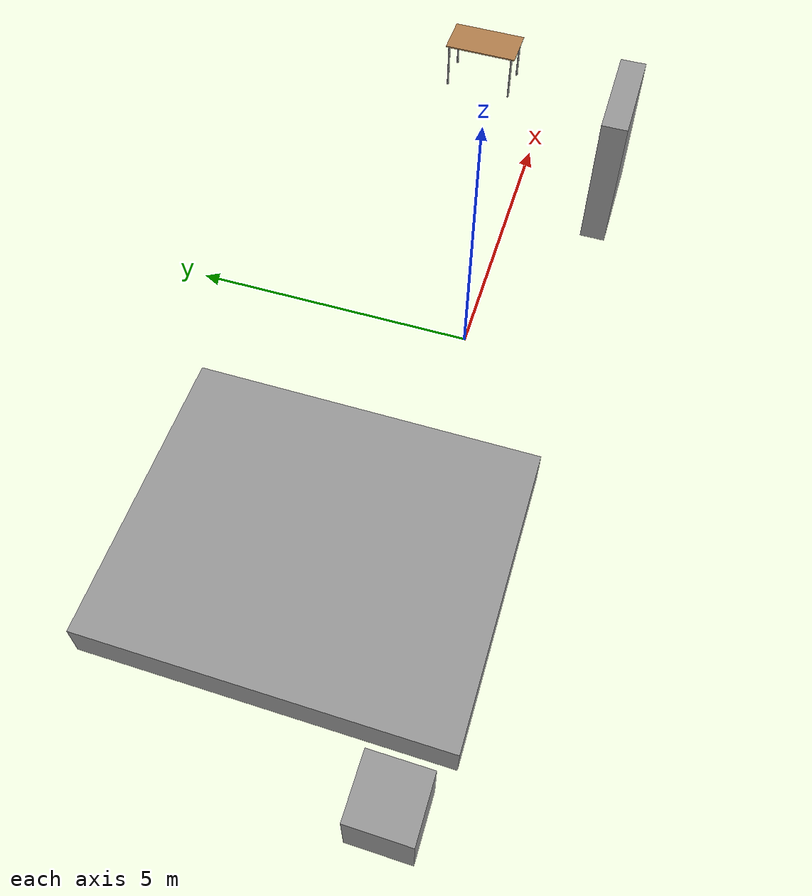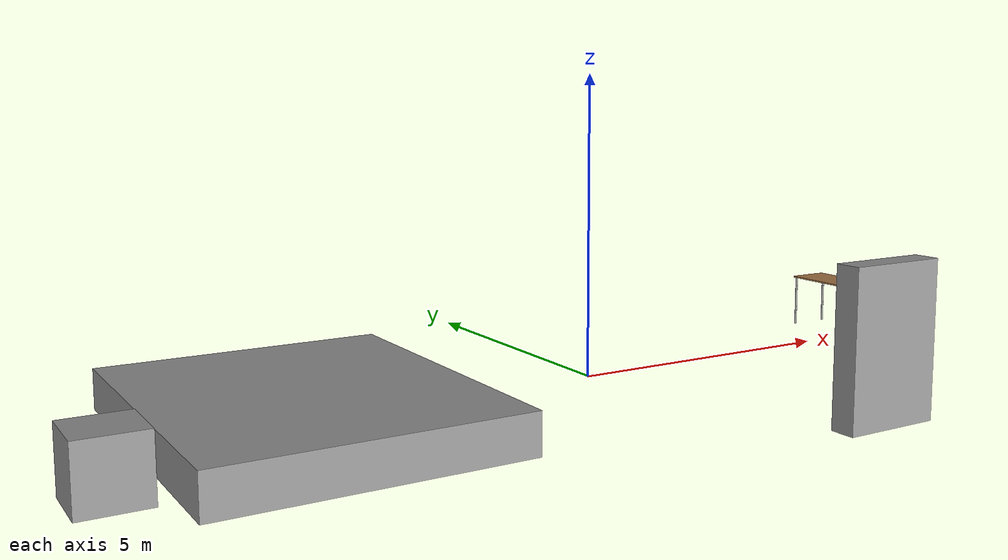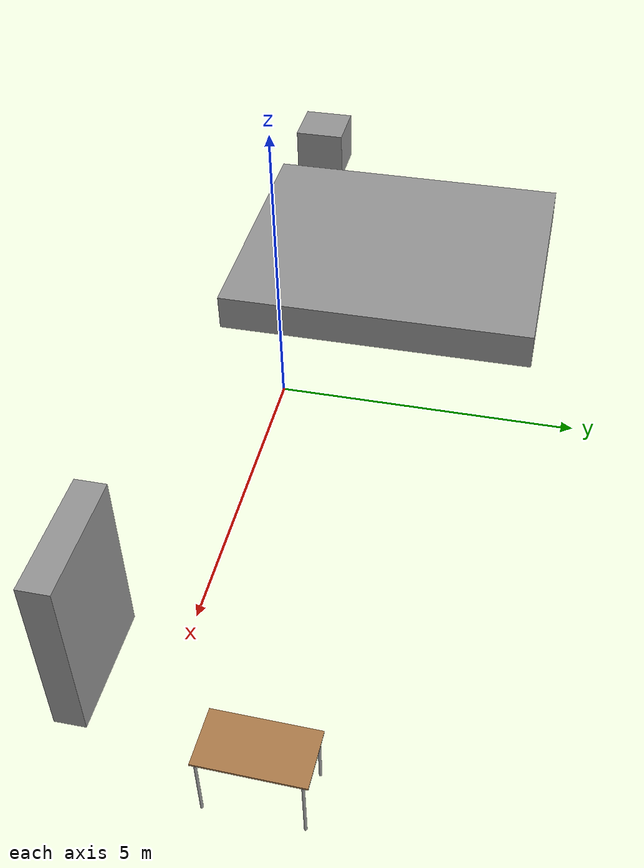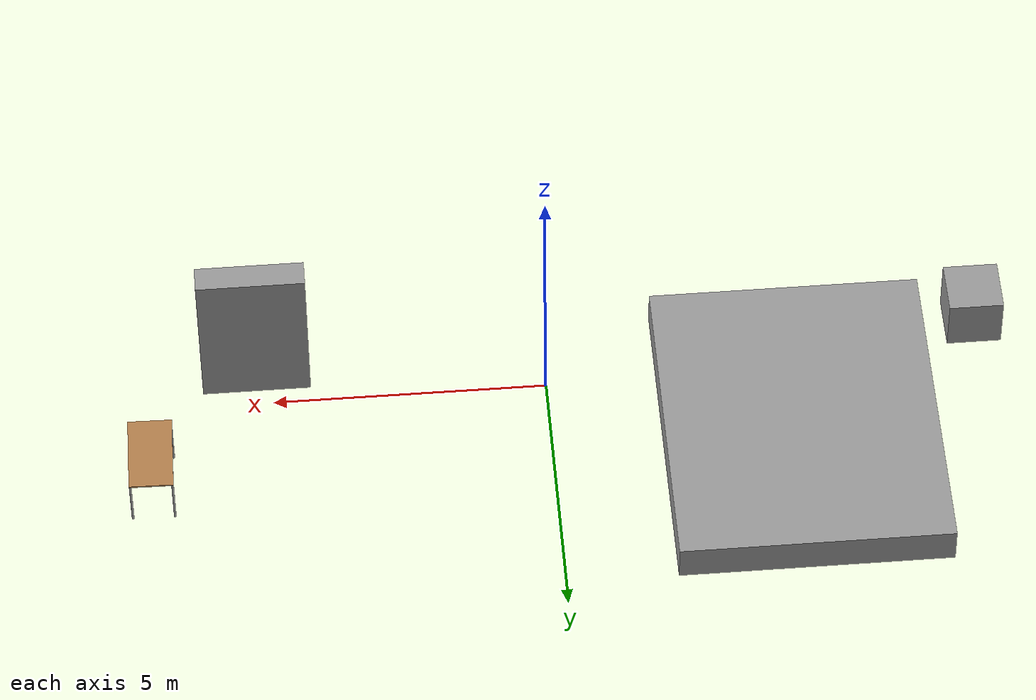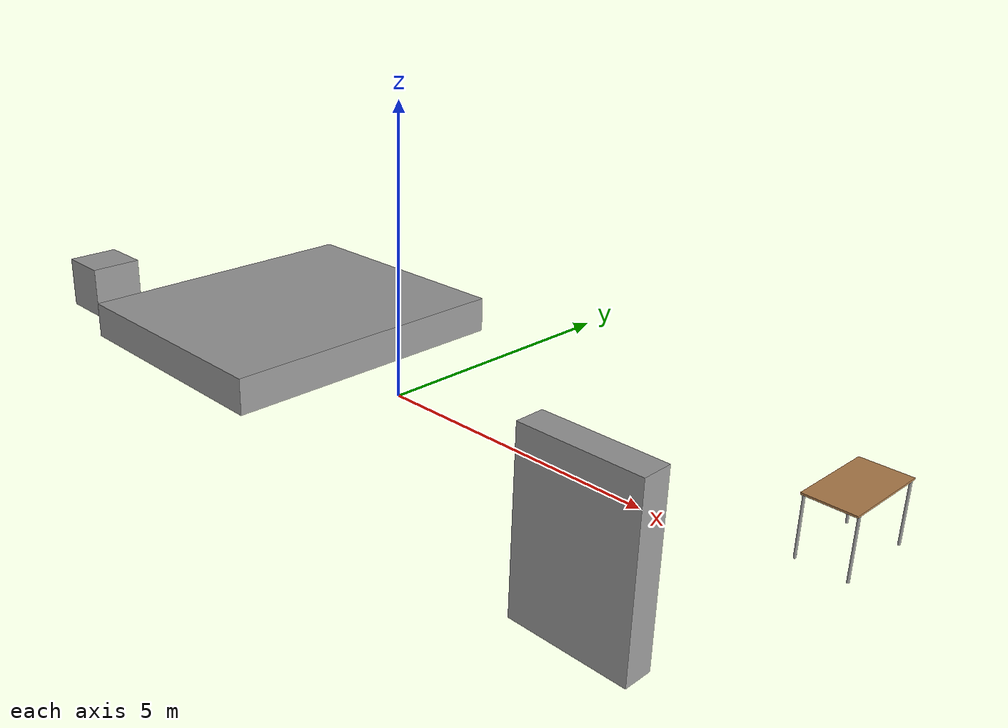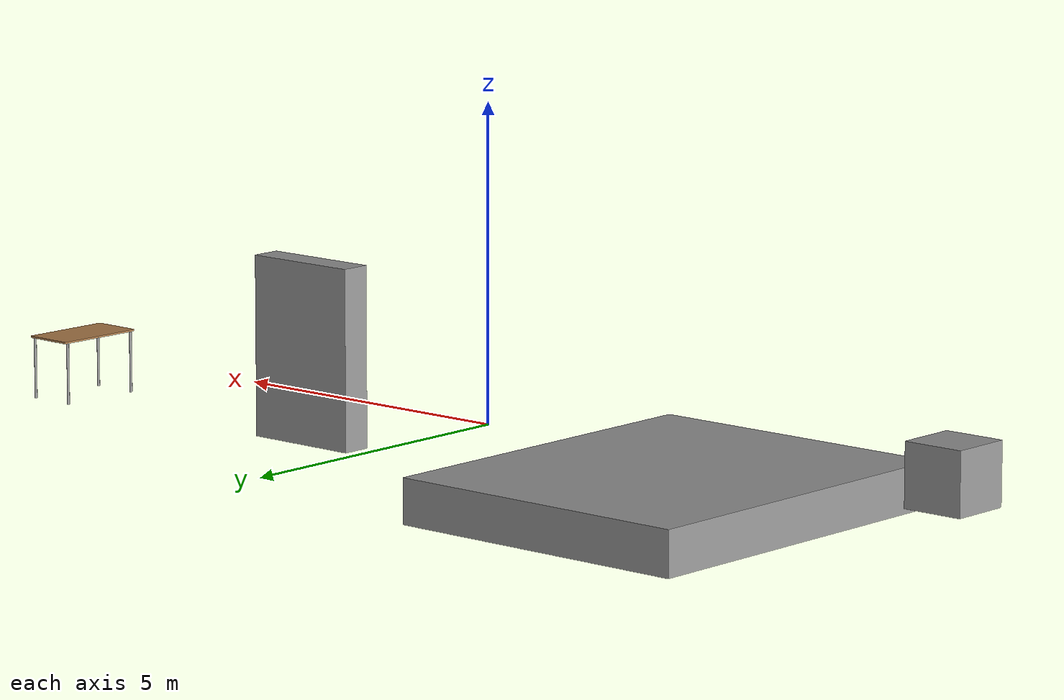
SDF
<?xml version='1.0'?>
<sdf version='1.6'>
  <model name='bedroom1'>
    <link name='link_7'>
      <pose frame=''>-4.56519 1.16033 -0.175 0 -0 0</pose>
      <inertial>
        <mass>1</mass>
        <inertia>
          <ixx>0.166667</ixx>
          <ixy>0</ixy>
          <ixz>0</ixz>
          <iyy>0.166667</iyy>
          <iyz>0</iyz>
          <izz>0.166667</izz>
        </inertia>
        <pose frame=''>0 0 0 0 -0 0</pose>
      </inertial>
      <gravity>1</gravity>
      <self_collide>0</self_collide>
      <kinematic>0</kinematic>
      <visual name='visual'>
        <pose frame=''>0 0 0 0 -0 0</pose>
        <geometry>
          <box>
            <size>5 6 0.7</size>
          </box>
        </geometry>
        <material>
          <lighting>1</lighting>
          <script>
            <uri>file://media/materials/scripts/gazebo.material</uri>
            <name>Gazebo/Grey</name>
          </script>
          <shader type='pixel'>
            <normal_map>__default__</normal_map>
          </shader>
          <ambient>0.3 0.3 0.3 1</ambient>
          <diffuse>0.7 0.7 0.7 1</diffuse>
          <specular>0.01 0.01 0.01 1</specular>
          <emissive>0 0 0 1</emissive>
        </material>
        <transparency>0</transparency>
        <cast_shadows>1</cast_shadows>
      </visual>
      <collision name='collision'>
        <laser_retro>0</laser_retro>
        <max_contacts>10</max_contacts>
        <pose frame=''>0 0 0 0 -0 0</pose>
        <geometry>
          <box>
            <size>5 6 0.7</size>
          </box>
        </geometry>
        <surface>
          <friction>
            <ode>
              <mu>1</mu>
              <mu2>1</mu2>
              <fdir1>0 0 0</fdir1>
              <slip1>0</slip1>
              <slip2>0</slip2>
            </ode>
            <torsional>
              <coefficient>1</coefficient>
              <patch_radius>0</patch_radius>
              <surface_radius>0</surface_radius>
              <use_patch_radius>1</use_patch_radius>
              <ode>
                <slip>0</slip>
              </ode>
            </torsional>
          </friction>
          <bounce>
            <restitution_coefficient>0</restitution_coefficient>
            <threshold>1e+06</threshold>
          </bounce>
          <contact>
            <collide_without_contact>0</collide_without_contact>
            <collide_without_contact_bitmask>1</collide_without_contact_bitmask>
            <collide_bitmask>1</collide_bitmask>
            <ode>
              <soft_cfm>0</soft_cfm>
              <soft_erp>0.2</soft_erp>
              <kp>1e+13</kp>
              <kd>1</kd>
              <max_vel>0.01</max_vel>
              <min_depth>0</min_depth>
            </ode>
            <bullet>
              <split_impulse>1</split_impulse>
              <split_impulse_penetration_threshold>-0.01</split_impulse_penetration_threshold>
              <soft_cfm>0</soft_cfm>
              <soft_erp>0.2</soft_erp>
              <kp>1e+13</kp>
              <kd>1</kd>
            </bullet>
          </contact>
        </surface>
      </collision>
    </link>
    <link name='link_12'>
      <pose frame=''>5.29621 -1.61388 0.225 0 -0 0</pose>
      <inertial>
        <mass>1</mass>
        <inertia>
          <ixx>0.166667</ixx>
          <ixy>0</ixy>
          <ixz>0</ixz>
          <iyy>0.166667</iyy>
          <iyz>0</iyz>
          <izz>0.166667</izz>
        </inertia>
        <pose frame=''>0 0 0 0 -0 0</pose>
      </inertial>
      <gravity>1</gravity>
      <self_collide>0</self_collide>
      <kinematic>0</kinematic>
      <visual name='visual'>
        <pose frame=''>0 0 0 0 -0 0</pose>
        <geometry>
          <box>
            <size>2 0.5 3</size>
          </box>
        </geometry>
        <material>
          <lighting>1</lighting>
          <script>
            <uri>file://media/materials/scripts/gazebo.material</uri>
            <name>Gazebo/Grey</name>
          </script>
          <shader type='pixel'>
            <normal_map>__default__</normal_map>
          </shader>
          <ambient>0.3 0.3 0.3 1</ambient>
          <diffuse>0.7 0.7 0.7 1</diffuse>
          <specular>0.01 0.01 0.01 1</specular>
          <emissive>0 0 0 1</emissive>
        </material>
        <transparency>0</transparency>
        <cast_shadows>1</cast_shadows>
      </visual>
      <collision name='collision'>
        <laser_retro>0</laser_retro>
        <max_contacts>10</max_contacts>
        <pose frame=''>0 0 0 0 -0 0</pose>
        <geometry>
          <box>
            <size>2 0.5 3</size>
          </box>
        </geometry>
        <surface>
          <friction>
            <ode>
              <mu>1</mu>
              <mu2>1</mu2>
              <fdir1>0 0 0</fdir1>
              <slip1>0</slip1>
              <slip2>0</slip2>
            </ode>
            <torsional>
              <coefficient>1</coefficient>
              <patch_radius>0</patch_radius>
              <surface_radius>0</surface_radius>
              <use_patch_radius>1</use_patch_radius>
              <ode>
                <slip>0</slip>
              </ode>
            </torsional>
          </friction>
          <bounce>
            <restitution_coefficient>0</restitution_coefficient>
            <threshold>1e+06</threshold>
          </bounce>
          <contact>
            <collide_without_contact>0</collide_without_contact>
            <collide_without_contact_bitmask>1</collide_without_contact_bitmask>
            <collide_bitmask>1</collide_bitmask>
            <ode>
              <soft_cfm>0</soft_cfm>
              <soft_erp>0.2</soft_erp>
              <kp>1e+13</kp>
              <kd>1</kd>
              <max_vel>0.01</max_vel>
              <min_depth>0</min_depth>
            </ode>
            <bullet>
              <split_impulse>1</split_impulse>
              <split_impulse_penetration_threshold>-0.01</split_impulse_penetration_threshold>
              <soft_cfm>0</soft_cfm>
              <soft_erp>0.2</soft_erp>
              <kp>1e+13</kp>
              <kd>1</kd>
            </bullet>
          </contact>
        </surface>
      </collision>
    </link>
    <link name='link_8'>
      <pose frame=''>-8.00297 -1.1238 0.225 0 -0 0</pose>
      <inertial>
        <mass>1</mass>
        <inertia>
          <ixx>0.166667</ixx>
          <ixy>0</ixy>
          <ixz>0</ixz>
          <iyy>0.166667</iyy>
          <iyz>0</iyz>
          <izz>0.166667</izz>
        </inertia>
      </inertial>
      <visual name='visual'>
        <pose frame=''>0 0 0 0 -0 0</pose>
        <geometry>
          <box>
            <size>1 1 1</size>
          </box>
        </geometry>
        <material>
          <lighting>1</lighting>
          <script>
            <uri>file://media/materials/scripts/gazebo.material</uri>
            <name>Gazebo/Grey</name>
          </script>
          <shader type='pixel'/>
          <ambient>0.3 0.3 0.3 1</ambient>
          <diffuse>0.7 0.7 0.7 1</diffuse>
          <specular>0.01 0.01 0.01 1</specular>
          <emissive>0 0 0 1</emissive>
        </material>
        <transparency>0</transparency>
        <cast_shadows>1</cast_shadows>
      </visual>
      <collision name='collision'>
        <laser_retro>0</laser_retro>
        <max_contacts>10</max_contacts>
        <pose frame=''>0 0 0 0 -0 0</pose>
        <geometry>
          <box>
            <size>1 1 1</size>
          </box>
        </geometry>
        <surface>
          <friction>
            <ode>
              <mu>1</mu>
              <mu2>1</mu2>
              <fdir1>0 0 0</fdir1>
              <slip1>0</slip1>
              <slip2>0</slip2>
            </ode>
            <torsional>
              <coefficient>1</coefficient>
              <patch_radius>0</patch_radius>
              <surface_radius>0</surface_radius>
              <use_patch_radius>1</use_patch_radius>
              <ode>
                <slip>0</slip>
              </ode>
            </torsional>
          </friction>
          <bounce>
            <restitution_coefficient>0</restitution_coefficient>
            <threshold>1e+06</threshold>
          </bounce>
          <contact>
            <collide_without_contact>0</collide_without_contact>
            <collide_without_contact_bitmask>1</collide_without_contact_bitmask>
            <collide_bitmask>1</collide_bitmask>
            <ode>
              <soft_cfm>0</soft_cfm>
              <soft_erp>0.2</soft_erp>
              <kp>1e+13</kp>
              <kd>1</kd>
              <max_vel>0.01</max_vel>
              <min_depth>0</min_depth>
            </ode>
            <bullet>
              <split_impulse>1</split_impulse>
              <split_impulse_penetration_threshold>-0.01</split_impulse_penetration_threshold>
              <soft_cfm>0</soft_cfm>
              <soft_erp>0.2</soft_erp>
              <kp>1e+13</kp>
              <kd>1</kd>
            </bullet>
          </contact>
        </surface>
      </collision>
    </link>
    <model name='table'>
      <static>1</static>
      <link name='link'>
        <collision name='surface'>
          <pose frame=''>0 0 1 0 -0 0</pose>
          <geometry>
            <box>
              <size>1.5 0.8 0.03</size>
            </box>
          </geometry>
          <surface>
            <friction>
              <ode>
                <mu>0.6</mu>
                <mu2>0.6</mu2>
              </ode>
            </friction>
          </surface>
        </collision>
        <visual name='visual1'>
          <pose frame=''>0 0 1 0 -0 0</pose>
          <geometry>
            <box>
              <size>1.5 0.8 0.03</size>
            </box>
          </geometry>
          <material>
            <script>
              <uri>file://media/materials/scripts/gazebo.material</uri>
              <name>Gazebo/Wood</name>
            </script>
          </material>
        </visual>
        <collision name='front_left_leg'>
          <pose frame=''>0.68 0.38 0.5 0 -0 0</pose>
          <geometry>
            <cylinder>
              <radius>0.02</radius>
              <length>1</length>
            </cylinder>
          </geometry>
        </collision>
        <visual name='front_left_leg'>
          <pose frame=''>0.68 0.38 0.5 0 -0 0</pose>
          <geometry>
            <cylinder>
              <radius>0.02</radius>
              <length>1</length>
            </cylinder>
          </geometry>
          <material>
            <script>
              <uri>file://media/materials/scripts/gazebo.material</uri>
              <name>Gazebo/Grey</name>
            </script>
          </material>
        </visual>
        <collision name='front_right_leg'>
          <pose frame=''>0.68 -0.38 0.5 0 -0 0</pose>
          <geometry>
            <cylinder>
              <radius>0.02</radius>
              <length>1</length>
            </cylinder>
          </geometry>
        </collision>
        <visual name='front_right_leg'>
          <pose frame=''>0.68 -0.38 0.5 0 -0 0</pose>
          <geometry>
            <cylinder>
              <radius>0.02</radius>
              <length>1</length>
            </cylinder>
          </geometry>
          <material>
            <script>
              <uri>file://media/materials/scripts/gazebo.material</uri>
              <name>Gazebo/Grey</name>
            </script>
          </material>
        </visual>
        <collision name='back_right_leg'>
          <pose frame=''>-0.68 -0.38 0.5 0 -0 0</pose>
          <geometry>
            <cylinder>
              <radius>0.02</radius>
              <length>1</length>
            </cylinder>
          </geometry>
        </collision>
        <visual name='back_right_leg'>
          <pose frame=''>-0.68 -0.38 0.5 0 -0 0</pose>
          <geometry>
            <cylinder>
              <radius>0.02</radius>
              <length>1</length>
            </cylinder>
          </geometry>
          <material>
            <script>
              <uri>file://media/materials/scripts/gazebo.material</uri>
              <name>Gazebo/Grey</name>
            </script>
          </material>
        </visual>
        <collision name='back_left_leg'>
          <pose frame=''>-0.68 0.38 0.5 0 -0 0</pose>
          <geometry>
            <cylinder>
              <radius>0.02</radius>
              <length>1</length>
            </cylinder>
          </geometry>
        </collision>
        <visual name='back_left_leg'>
          <pose frame=''>-0.68 0.38 0.5 0 -0 0</pose>
          <geometry>
            <cylinder>
              <radius>0.02</radius>
              <length>1</length>
            </cylinder>
          </geometry>
          <material>
            <script>
              <uri>file://media/materials/scripts/gazebo.material</uri>
              <name>Gazebo/Grey</name>
            </script>
          </material>
        </visual>
      </link>
      <pose frame=''>7.27198 1.57734 -0.275 0 0 -1.58822</pose>
    </model>
    <static>0</static>
    <allow_auto_disable>1</allow_auto_disable>
  </model>
</sdf>
